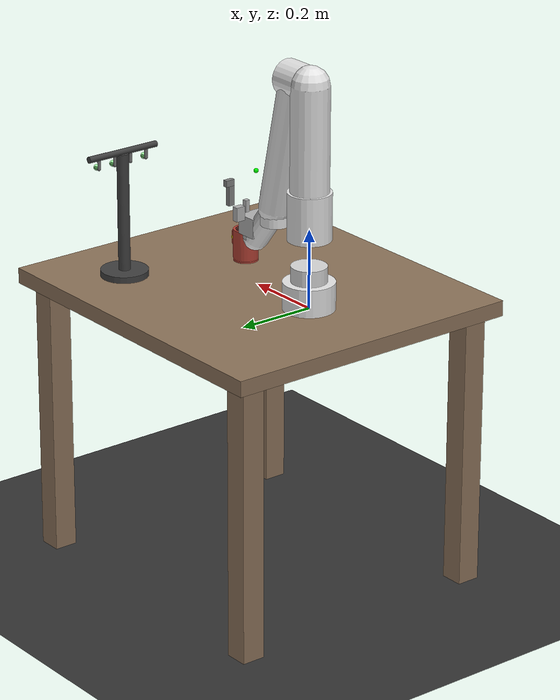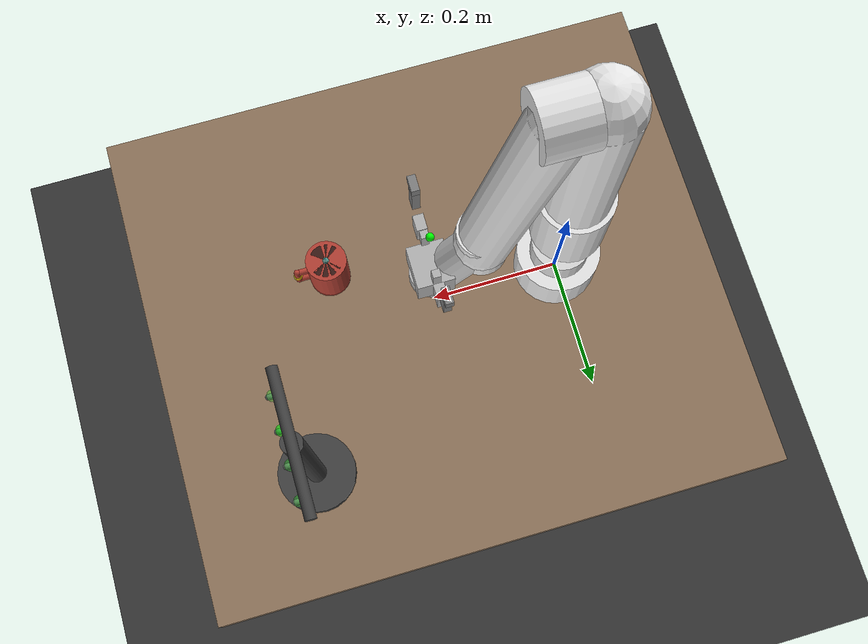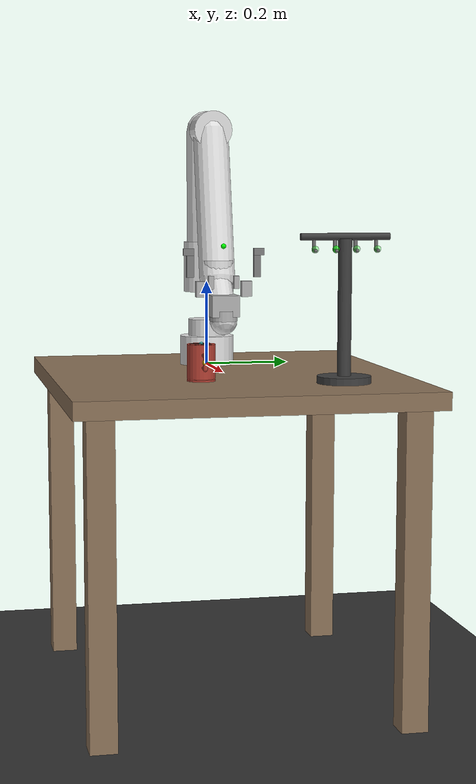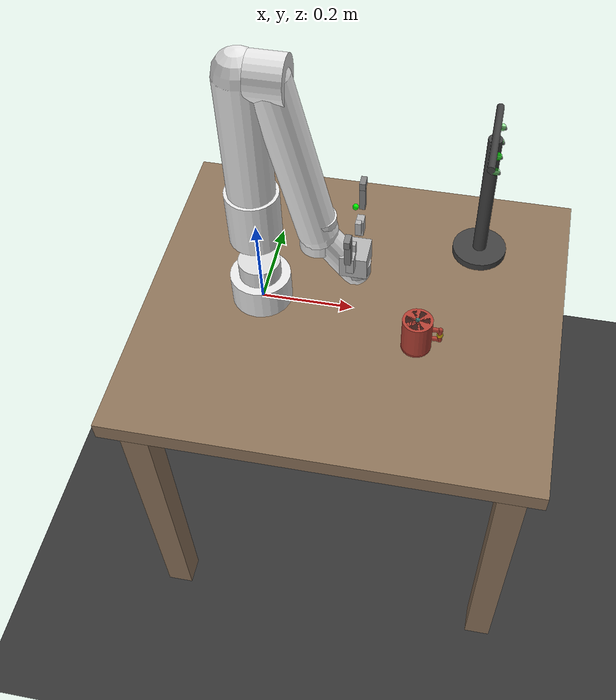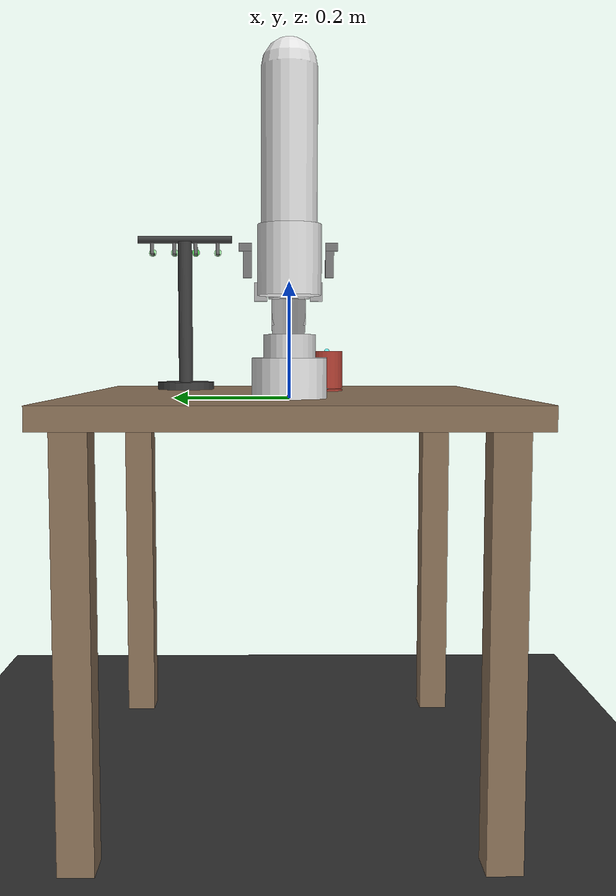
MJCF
<?xml version="1.0" encoding="utf-8"?>
<mujoco model="xarm7_mug_rack_task">
  <compiler angle="radian" autolimits="true"/>

  <option timestep="0.002" gravity="0 0 -9.81" integrator="implicitfast" cone="elliptic">
    <flag contact="enable"/>
  </option>

  <default>
    <default class="xarm">
      <joint axis="0 0 1" damping="5" armature="0.1"/>
      <geom type="capsule" rgba="0.95 0.95 0.95 1" friction="0.8 0.02 0.01"/>
    </default>
    <default class="gripper">
      <geom rgba="0.7 0.7 0.7 1" friction="1.0 0.05 0.01"/>
    </default>
    <default class="finger">
      <geom rgba="0.5 0.5 0.5 1" friction="1.2 0.05 0.01" solimp="0.95 0.99 0.001" solref="0.004 1"/>
    </default>
    <default class="mug">
      <geom rgba="0.7 0.25 0.2 1" friction="0.7 0.02 0.01" solimp="0.95 0.99 0.001" solref="0.002 1"/>
    </default>
    <default class="rack">
      <geom rgba="0.25 0.25 0.25 1" friction="0.5 0.01 0.01"/>
    </default>
    <default class="hook">
      <geom rgba="0.45 0.45 0.45 1" friction="0.4 0.01 0.01"/>
    </default>
    <default class="table">
      <geom rgba="0.55 0.45 0.35 1"/>
    </default>
  </default>

  <asset>
    <texture name="texplane" type="2d" builtin="checker" rgb1="0.15 0.15 0.15" rgb2="0.25 0.25 0.25" width="512" height="512"/>
    <material name="matplane" texture="texplane" texrepeat="6 6" reflectance="0.1"/>
    <texture name="wood" type="2d" builtin="flat" rgb1="0.55 0.45 0.35" rgb2="0.5 0.4 0.3" width="256" height="256"/>
    <material name="wood" texture="wood" reflectance="0.05"/>
  </asset>

  <worldbody>
    <!-- Ground plane (below table) -->
    <geom name="floor" type="plane" size="2 2 0.1" pos="0 0 -0.75" material="matplane"/>
    <light pos="0.3 0 1.5" dir="0 0 -1" diffuse="0.8 0.8 0.8" specular="0.2 0.2 0.2"/>
    <light pos="-0.3 0.4 1.0" dir="0.2 -0.2 -0.9" diffuse="0.4 0.4 0.4"/>

    <!-- ==================== TABLE ==================== -->
    <!-- Table surface at Z=0, robot sits on it -->
    <body name="table" pos="0.2 0 0">
      <geom name="table_top" type="box" class="table" size="0.45 0.40 0.02" pos="0 0 -0.02" material="wood"/>
      <geom name="leg1" type="box" class="table" size="0.03 0.03 0.355" pos="-0.39 -0.34 -0.395"/>
      <geom name="leg2" type="box" class="table" size="0.03 0.03 0.355" pos="0.39 -0.34 -0.395"/>
      <geom name="leg3" type="box" class="table" size="0.03 0.03 0.355" pos="-0.39 0.34 -0.395"/>
      <geom name="leg4" type="box" class="table" size="0.03 0.03 0.355" pos="0.39 0.34 -0.395"/>
    </body>

    <!-- ==================== MUG RACK (FIXED) ==================== -->
    <!-- Stand base sits on table at z=0 -->
    <body name="rack_stand" pos="0.45 0.22 0">
      <!-- Base: height 0.016, center at z=0.008 -->
      <geom name="stand_base" class="rack" type="cylinder" size="0.06 0.008" pos="0 0 0.008"/>
      <!-- Pole: goes from z=0.016 up. Height ~0.30, so center at z=0.016 + 0.15 = 0.166 -->
      <geom name="stand_pole" class="rack" type="cylinder" size="0.015 0.15" pos="0 0 0.166"/>

      <!-- Horizontal bar at top of pole (z = 0.316) -->
      <body name="rack_bar" pos="0 0 0.32">
        <geom name="bar" class="rack" type="cylinder" size="0.008 0.10" euler="1.5708 0 0"/>

        <!-- Hook 1 -->
        <body name="hook1" pos="0 -0.07 0">
          <geom name="h1_stem" class="hook" type="cylinder" size="0.004 0.015" pos="0 0 -0.015"/>
          <geom name="h1_curve" class="hook" type="capsule" size="0.004 0.008" pos="0.008 0 -0.030" euler="0 1.5708 0"/>
          <site name="hook1_target" pos="0.010 0 -0.027" size="0.008" rgba="0 1 0 0.3"/>
        </body>

        <!-- Hook 2 (PRIMARY TARGET) -->
        <body name="hook2" pos="0 -0.023 0">
          <geom name="h2_stem" class="hook" type="cylinder" size="0.004 0.015" pos="0 0 -0.015"/>
          <geom name="h2_curve" class="hook" type="capsule" size="0.004 0.008" pos="0.008 0 -0.030" euler="0 1.5708 0"/>
          <site name="hook2_target" pos="0.010 0 -0.027" size="0.008" rgba="0 1 0 0.6"/>
        </body>

        <!-- Hook 3 -->
        <body name="hook3" pos="0 0.023 0">
          <geom name="h3_stem" class="hook" type="cylinder" size="0.004 0.015" pos="0 0 -0.015"/>
          <geom name="h3_curve" class="hook" type="capsule" size="0.004 0.008" pos="0.008 0 -0.030" euler="0 1.5708 0"/>
          <site name="hook3_target" pos="0.010 0 -0.027" size="0.008" rgba="0 1 0 0.3"/>
        </body>

        <!-- Hook 4 -->
        <body name="hook4" pos="0 0.07 0">
          <geom name="h4_stem" class="hook" type="cylinder" size="0.004 0.015" pos="0 0 -0.015"/>
          <geom name="h4_curve" class="hook" type="capsule" size="0.004 0.008" pos="0.008 0 -0.030" euler="0 1.5708 0"/>
          <site name="hook4_target" pos="0.010 0 -0.027" size="0.008" rgba="0 1 0 0.3"/>
        </body>
      </body>
    </body>

    <!-- ==================== MUG (PARAMETERIZABLE) ==================== -->
    <!-- Mug base rests on table: bottom at z=0 -->
    <!-- Mug base half-height is 0.002, so center at z=0.002 -->
    <body name="mug" pos="0.35 -0.08 0.002">
      <freejoint name="mug_joint"/>
      <!-- Base (bottom disc) -->
      <geom name="mug_base" class="mug" type="cylinder" size="0.032 0.002" mass="0.03"/>
      <!-- Wall: starts at z=0.004 (top of base), height 0.076 (half=0.038), center at z=0.004+0.038=0.042 -->
      <geom name="mug_wall" class="mug" type="cylinder" size="0.032 0.038" pos="0 0 0.042" mass="0.10"/>
      <!-- Inner cavity (visual only) -->
      <geom name="mug_inner" type="cylinder" size="0.026 0.036" pos="0 0 0.044" rgba="0.22 0.1 0.08 1" contype="0" conaffinity="0"/>
      <!-- Handle attached to wall -->
      <body name="handle" pos="0.032 0 0.044">
        <geom name="h_top" class="mug" type="capsule" size="0.005 0.008" pos="0.008 0 0.014" euler="0 1.5708 0" mass="0.01"/>
        <geom name="h_mid" class="mug" type="capsule" size="0.005 0.016" pos="0.016 0 0" mass="0.01"/>
        <geom name="h_bot" class="mug" type="capsule" size="0.005 0.008" pos="0.008 0 -0.014" euler="0 1.5708 0" mass="0.01"/>
        <site name="handle_hole" pos="0.016 0 0" size="0.007" rgba="1 1 0 0.6"/>
      </body>
      <!-- Tracking sites -->
      <site name="mug_center" pos="0 0 0.040" size="0.006" rgba="1 0 0 0.8"/>
      <site name="mug_top" pos="0 0 0.080" size="0.005" rgba="0 1 1 0.5"/>
      <site name="mug_bottom" pos="0 0 0" size="0.005" rgba="0 1 1 0.5"/>
    </body>

    <!-- ==================== xArm7 ROBOT ==================== -->
    <!-- Robot base at origin (0,0,0), sitting on table surface -->
    <body name="link_base" pos="0 0 0">
      <geom name="base_geom" type="cylinder" size="0.065 0.035" pos="0 0 0.035" rgba="0.9 0.9 0.9 1"/>
      <geom name="base_top" type="cylinder" size="0.045 0.025" pos="0 0 0.085" rgba="0.85 0.85 0.85 1"/>

      <body name="link1" pos="0 0 0.267">
        <inertial pos="-0.0002 0.02905 -0.01233" mass="2.382" diaginertia="0.0056905 0.0049566 0.003316654"/>
        <joint name="joint1" class="xarm" range="-6.28 6.28" damping="10"/>
        <geom name="link1_geom" type="cylinder" size="0.055 0.06" pos="0 0 -0.03" rgba="0.9 0.9 0.9 1"/>

        <body name="link2" pos="0 0 0" euler="-1.5708 0 0">
          <inertial pos="0.00022 -0.12856 0.01735" mass="1.869" diaginertia="0.0095989 0.00382472 0.007565669"/>
          <joint name="joint2" class="xarm" range="-2.059 2.0944" damping="10"/>
          <geom name="link2_geom" type="capsule" size="0.048" fromto="0 0 0 0 -0.293 0" rgba="0.9 0.9 0.9 1"/>

          <body name="link3" pos="0 -0.293 0" euler="1.5708 0 0">
            <inertial pos="0.0466 -0.02463 -0.00768" mass="1.6383" diaginertia="0.00310955 0.00264483 0.0026624"/>
            <joint name="joint3" class="xarm" range="-6.28 6.28" damping="5"/>
            <geom name="link3_geom" type="cylinder" size="0.045 0.035" pos="0.0525 0 0" euler="0 1.5708 0" rgba="0.9 0.9 0.9 1"/>

            <body name="link4" pos="0.0525 0 0" euler="1.5708 0 0">
              <inertial pos="0.07047 -0.11575 0.012" mass="1.7269" diaginertia="0.005889 0.00359703 0.00543244"/>
              <joint name="joint4" class="xarm" range="-0.19198 3.927" damping="5"/>
              <geom name="link4_geom" type="capsule" size="0.042" fromto="0 0 0 0.0775 -0.3425 0" rgba="0.9 0.9 0.9 1"/>

              <body name="link5" pos="0.0775 -0.3425 0" euler="1.5708 0 0">
                <inertial pos="-0.00032 0.01604 -0.026" mass="1.3203" diaginertia="0.00534665 0.0049779 0.0013624"/>
                <joint name="joint5" class="xarm" range="-6.28 6.28" damping="5"/>
                <geom name="link5_geom" type="cylinder" size="0.038 0.04" rgba="0.9 0.9 0.9 1"/>

                <body name="link6" pos="0 0 0" euler="1.5708 0 0">
                  <inertial pos="0.06469 0.03278 0.02141" mass="1.325" diaginertia="0.0014745 0.0019037 0.0023652"/>
                  <joint name="joint6" class="xarm" range="-1.69297 3.14159" damping="2"/>
                  <geom name="link6_geom" type="capsule" size="0.032" fromto="0 0 0 0.076 0.097 0" rgba="0.85 0.85 0.85 1"/>

                  <body name="link7" pos="0.076 0.097 0" euler="-1.5708 0 0">
                    <inertial pos="0 -0.00677 -0.01098" mass="0.17" diaginertia="9.3e-05 5.87e-05 0.000132"/>
                    <joint name="joint7" class="xarm" range="-6.28 6.28" damping="2"/>
                    <geom name="link7_geom" type="cylinder" size="0.032 0.012" pos="0 0 -0.012" rgba="0.7 0.7 0.7 1"/>
                    <site name="ee_site" pos="0 0 0" size="0.008" rgba="1 0 0 0.5"/>

                    <!-- Gripper -->
                    <body name="gripper_base" pos="0 0 0">
                      <geom name="gripper_base_geom" class="gripper" type="box" size="0.028 0.032 0.025" pos="0 0 -0.035"/>
                      <joint name="drive_joint" type="hinge" axis="1 0 0" pos="0 0.035 -0.059" range="0 0.85" damping="0.5"/>

                      <body name="left_outer_knuckle" pos="0 0.035 -0.059">
                        <geom class="gripper" type="box" size="0.008 0.012 0.018" pos="0 0.018 -0.015"/>
                        <body name="left_finger" pos="0 0.035465 -0.042039">
                          <joint name="left_finger_joint" type="hinge" axis="1 0 0" range="0 0.85" damping="0.2"/>
                          <geom class="finger" type="box" size="0.006 0.008 0.025" pos="0 0.008 -0.025"/>
                          <geom class="finger" type="box" size="0.006 0.012 0.008" pos="0 0.012 -0.058"/>
                        </body>
                      </body>

                      <body name="left_inner_knuckle" pos="0 0.02 -0.074">
                        <joint name="left_inner_knuckle_joint" type="hinge" axis="1 0 0" range="0 0.85" damping="0.2"/>
                        <geom class="gripper" type="box" size="0.006 0.006 0.015" pos="0 0.01 -0.015"/>
                      </body>

                      <body name="right_outer_knuckle" pos="0 -0.035 -0.059">
                        <joint name="right_outer_knuckle_joint" type="hinge" axis="-1 0 0" range="0 0.85" damping="0.2"/>
                        <geom class="gripper" type="box" size="0.008 0.012 0.018" pos="0 -0.018 -0.015"/>
                        <body name="right_finger" pos="0 -0.035465 -0.042039">
                          <joint name="right_finger_joint" type="hinge" axis="1 0 0" range="0 0.85" damping="0.2"/>
                          <geom class="finger" type="box" size="0.006 0.008 0.025" pos="0 -0.008 -0.025"/>
                          <geom class="finger" type="box" size="0.006 0.012 0.008" pos="0 -0.012 -0.058"/>
                        </body>
                      </body>

                      <body name="right_inner_knuckle" pos="0 -0.02 -0.074">
                        <joint name="right_inner_knuckle_joint" type="hinge" axis="-1 0 0" range="0 0.85" damping="0.2"/>
                        <geom class="gripper" type="box" size="0.006 0.006 0.015" pos="0 -0.01 -0.015"/>
                      </body>

                      <body name="link_tcp" pos="0 0 -0.172">
                        <site name="tcp_site" pos="0 0 0" size="0.006" rgba="0 1 0 1"/>
                      </body>
                    </body>
                  </body>
                </body>
              </body>
            </body>
          </body>
        </body>
      </body>
    </body>
  </worldbody>

  <!-- Actuators -->
  <actuator>
    <position name="act_j1" joint="joint1" kp="2000" kv="100"/>
    <position name="act_j2" joint="joint2" kp="2000" kv="100"/>
    <position name="act_j3" joint="joint3" kp="1500" kv="80"/>
    <position name="act_j4" joint="joint4" kp="1500" kv="80"/>
    <position name="act_j5" joint="joint5" kp="1000" kv="50"/>
    <position name="act_j6" joint="joint6" kp="500" kv="30"/>
    <position name="act_j7" joint="joint7" kp="500" kv="30"/>
    <position name="act_gripper" joint="drive_joint" kp="200" kv="10"/>
  </actuator>

  <!-- Gripper mimic constraints -->
  <equality>
    <joint joint1="drive_joint" joint2="left_finger_joint" polycoef="0 1 0 0 0"/>
    <joint joint1="drive_joint" joint2="left_inner_knuckle_joint" polycoef="0 1 0 0 0"/>
    <joint joint1="drive_joint" joint2="right_outer_knuckle_joint" polycoef="0 1 0 0 0"/>
    <joint joint1="drive_joint" joint2="right_finger_joint" polycoef="0 1 0 0 0"/>
    <joint joint1="drive_joint" joint2="right_inner_knuckle_joint" polycoef="0 1 0 0 0"/>
  </equality>

  <!-- Sensors -->
  <sensor>
    <framepos name="mug_pos" objtype="site" objname="mug_center"/>
    <framequat name="mug_quat" objtype="site" objname="mug_center"/>
    <framepos name="handle_pos" objtype="site" objname="handle_hole"/>
    <framepos name="hook_target_pos" objtype="site" objname="hook2_target"/>
    <framepos name="tcp_pos" objtype="site" objname="tcp_site"/>
    <framequat name="tcp_quat" objtype="site" objname="tcp_site"/>
  </sensor>

  <!-- Keyframes -->
  <keyframe>
    <key name="home" qpos="0 0 0 1.57 0 1.57 0  0 0 0 0 0 0  0.35 -0.08 0.002 1 0 0 0"/>
  </keyframe>
</mujoco>
